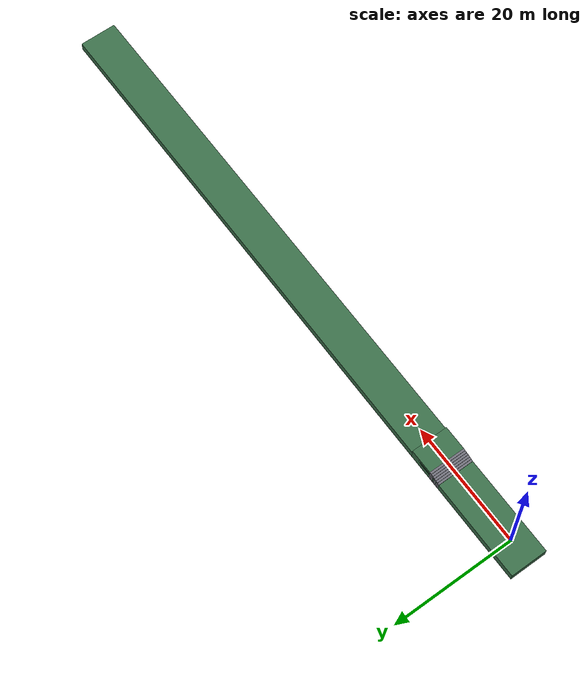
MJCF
<?xml version="1.0" encoding="utf-8"?>
<mujoco model="vrl flat with six 10cm stairs">
  <!-- Same approach/treads/width as 15cm test; only rise changes. -->
  <statistic center="12 0 0.5" extent="7"/>
  <visual><headlight diffuse="0.7 0.7 0.7" ambient="0.25 0.25 0.25"/>
    <global azimuth="-125" elevation="-22"/></visual>
  <default><default class="test_ground">
    <geom type="box" friction="0.8 0.8 0.8" priority="2" contype="1" conaffinity="1"/>
  </default></default>
  <worldbody>
    <light pos="12 0 8" dir="0 0 -1" directional="true"/>
    <geom name="stairs_flat" class="test_ground" pos="49 0 -0.75" size="53 3 0.75" rgba="0.22 0.42 0.28 1"/>
    <geom name="step10_1" class="test_ground" pos="12.175 0 -0.700" size="0.175 3 0.800" rgba="0.42 0.42 0.46 1"/>
    <geom name="step10_2" class="test_ground" pos="12.525 0 -0.650" size="0.175 3 0.850" rgba="0.42 0.42 0.46 1"/>
    <geom name="step10_3" class="test_ground" pos="12.875 0 -0.600" size="0.175 3 0.900" rgba="0.42 0.42 0.46 1"/>
    <geom name="step10_4" class="test_ground" pos="13.225 0 -0.550" size="0.175 3 0.950" rgba="0.42 0.42 0.46 1"/>
    <geom name="step10_5" class="test_ground" pos="13.575 0 -0.500" size="0.175 3 1.000" rgba="0.42 0.42 0.46 1"/>
    <geom name="step10_6" class="test_ground" pos="13.925 0 -0.450" size="0.175 3 1.050" rgba="0.42 0.42 0.46 1"/>
    <geom name="step10_landing" class="test_ground" pos="16.05 0 -0.450" size="1.95 3 1.050" rgba="0.22 0.42 0.28 1"/>
  </worldbody>
  <contact>
    <pair geom1="RR" geom2="stairs_flat"/><pair geom1="RL" geom2="stairs_flat"/><pair geom1="FR" geom2="stairs_flat"/><pair geom1="FL" geom2="stairs_flat"/>
    <pair geom1="RR" geom2="step10_1"/><pair geom1="RL" geom2="step10_1"/><pair geom1="FR" geom2="step10_1"/><pair geom1="FL" geom2="step10_1"/>
    <pair geom1="RR" geom2="step10_2"/><pair geom1="RL" geom2="step10_2"/><pair geom1="FR" geom2="step10_2"/><pair geom1="FL" geom2="step10_2"/>
    <pair geom1="RR" geom2="step10_3"/><pair geom1="RL" geom2="step10_3"/><pair geom1="FR" geom2="step10_3"/><pair geom1="FL" geom2="step10_3"/>
    <pair geom1="RR" geom2="step10_4"/><pair geom1="RL" geom2="step10_4"/><pair geom1="FR" geom2="step10_4"/><pair geom1="FL" geom2="step10_4"/>
    <pair geom1="RR" geom2="step10_5"/><pair geom1="RL" geom2="step10_5"/><pair geom1="FR" geom2="step10_5"/><pair geom1="FL" geom2="step10_5"/>
    <pair geom1="RR" geom2="step10_6"/><pair geom1="RL" geom2="step10_6"/><pair geom1="FR" geom2="step10_6"/><pair geom1="FL" geom2="step10_6"/>
    <pair geom1="RR" geom2="step10_landing"/><pair geom1="RL" geom2="step10_landing"/><pair geom1="FR" geom2="step10_landing"/><pair geom1="FL" geom2="step10_landing"/>
  </contact>
</mujoco>
